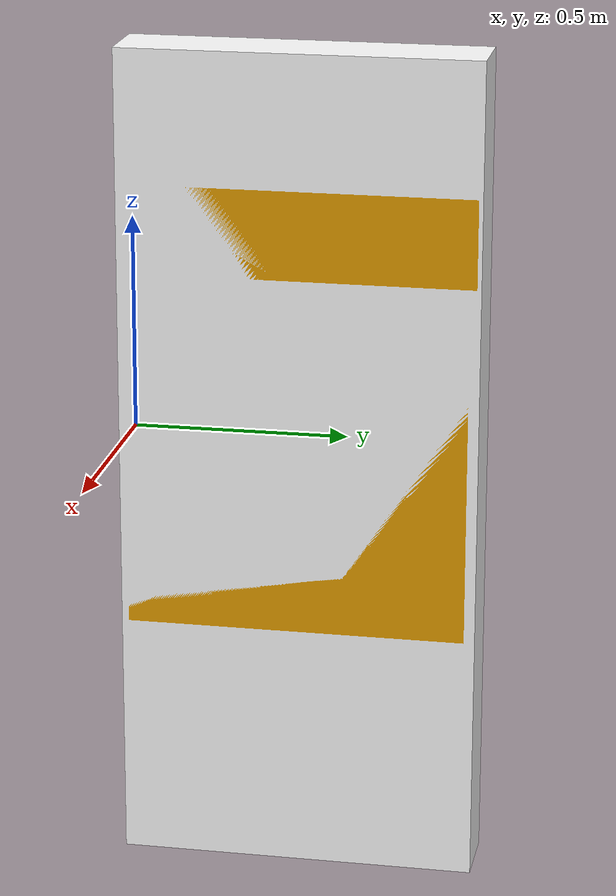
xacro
<?xml version="1.0"?>
<robot name="qr_block" xmlns:xacro="http://ros.org/wiki/xacro">

    <xacro:include filename= "$(find kortex_scripts)/objects/macros.xacro"/>

    <material name="grey">
        <color rgba="0.75 0.75 0.75 1"/>
    </material>

    <xacro:macro name="qr_block">
      <link name='qr_block_base_link'>
 	    <inertial>
            <origin xyz="0 0 0" rpy="0 0 0"/>
            <mass value="10" />
            <xacro:box_inertia mass="10" x="0.2" y="1" z="2" />
        </inertial>
            <collision>
                <origin xyz="0 0 0" rpy="0 0 0"/>
                <geometry>
                    <box size="0.2 1 2"/>
                </geometry>
            </collision>
        <visual>
            <origin xyz="0 0 -1" rpy="0 0 0" />
            <geometry>
                <mesh filename="package://pkg_cv_ros_tutorial_by_dhanuzch/models/qr_wall/meshes/qr_wall.dae" />
            </geometry>
        </visual>
        </link>

        <gazebo reference="qr_block_base_link">
            <kp>100000.0</kp>
            <kd>100.0</kd>
            <mu1>0.25</mu1>
            <mu2>0.25</mu2>
        </gazebo>
    </xacro:macro>

    <xacro:qr_block/>

</robot>
<!--xacro block.xacro > tmp.urdf && check_urdf tmp.urdf && rm tmp.urdf-->

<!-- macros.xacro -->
<robot xmlns:xacro="http://www.ros.org/wiki/xacro">

    <xacro:macro  name="cylinder_inertia" params="mass r l">
      <inertia  ixx="${mass*(3*r*r+l*l)/12}" ixy = "0" ixz = "0"
                iyy="${mass*(3*r*r+l*l)/12}" iyz = "0"
                izz="${mass*(r*r)/2}" />
    </xacro:macro >

    <xacro:macro name="box_inertia" params="mass x y z">
      <inertia  ixx="${mass*(y*y+z*z)/12}" ixy = "0" ixz = "0"
                iyy="${mass*(x*x+z*z)/12}" iyz = "0"
                izz="${mass*(x*x+z*z)/12}"
      />
    </xacro:macro>

  <xacro:macro name="sphere_inertia" params="mass r">
    <inertia
          ixx="${2*mass*r*r/5}" ixy = "0" ixz = "0"
          iyy="${2*mass*r*r/5}" iyz = "0"
          izz="${2*mass*r*r/5}"
    />
  </xacro:macro>

</robot>
